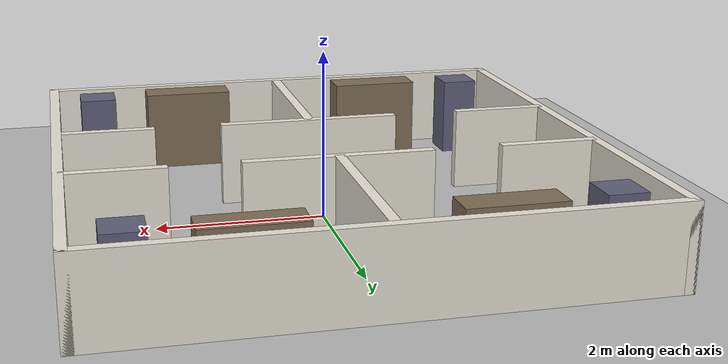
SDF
<?xml version="1.0" ?>
<sdf version="1.8">
  <world name="romi_office_world">
    <gravity>0 0 -9.8</gravity>

    <plugin filename="ignition-gazebo6-physics-system"
            name="ignition::gazebo::systems::Physics"/>
    <plugin filename="ignition-gazebo6-user-commands-system"
            name="ignition::gazebo::systems::UserCommands"/>
    <plugin filename="ignition-gazebo6-scene-broadcaster-system"
            name="ignition::gazebo::systems::SceneBroadcaster"/>
    <plugin filename="ignition-gazebo6-sensors-system"
            name="ignition::gazebo::systems::Sensors">
      <render_engine>ogre2</render_engine>
    </plugin>

    <!-- Neutral indoor ambient (no harsh outdoor sun) -->
    <scene>
      <ambient>0.55 0.55 0.55 1</ambient>
      <background>0.2 0.2 0.2 1</background>
      <shadows>false</shadows>
    </scene>

    <!-- Overhead fill light simulating fluorescent ceiling panels -->
    <light name="ceiling_light_main" type="directional">
      <cast_shadows>false</cast_shadows>
      <pose>0 0 5 0 0 0</pose>
      <diffuse>0.8 0.8 0.8 1</diffuse>
      <specular>0.1 0.1 0.1 1</specular>
      <direction>0 0 -1</direction>
      <attenuation>
        <range>20</range>
        <constant>0.8</constant>
        <linear>0.02</linear>
        <quadratic>0.0</quadratic>
      </attenuation>
    </light>

    <!-- Soft fill from above to avoid harsh shadows -->
    <light name="ceiling_light_fill" type="directional">
      <cast_shadows>false</cast_shadows>
      <pose>0 0 4 0 0 0</pose>
      <diffuse>0.4 0.4 0.4 1</diffuse>
      <specular>0.0 0.0 0.0 1</specular>
      <direction>0.1 0.1 -1</direction>
      <attenuation>
        <range>20</range>
        <constant>0.9</constant>
        <linear>0.01</linear>
        <quadratic>0.0</quadratic>
      </attenuation>
    </light>

    <!-- ───────── FLOOR ───────── -->
    <model name="floor_plane">
      <static>true</static>
      <pose>0 0 0 0 0 0</pose>
      <link name="link">
        <collision name="collision">
          <geometry>
            <plane>
              <normal>0 0 1</normal>
              <size>10 10</size>
            </plane>
          </geometry>
          <surface>
            <friction>
              <ode>
                <mu>1.0</mu>
                <mu2>1.0</mu2>
              </ode>
            </friction>
          </surface>
        </collision>
        <visual name="visual">
          <geometry>
            <plane>
              <normal>0 0 1</normal>
              <size>10 10</size>
            </plane>
          </geometry>
          <material>
            <!-- Light grey tile floor -->
            <ambient>0.72 0.72 0.72 1</ambient>
            <diffuse>0.72 0.72 0.72 1</diffuse>
          </material>
        </visual>
      </link>
    </model>

    <!-- South outer wall — full width to seal corners -->
    <model name="wall_outer_south">
      <static>true</static>
      <pose>0 -3.06 0.5 0 0 0</pose>
      <link name="link">
        <collision name="collision">
          <geometry><box><size>6.24 0.12 1.0</size></box></geometry>
        </collision>
        <visual name="visual">
          <geometry><box><size>6.24 0.12 1.0</size></box></geometry>
          <material>
            <ambient>0.91 0.89 0.84 1</ambient>
            <diffuse>0.91 0.89 0.84 1</diffuse>
          </material>
        </visual>
      </link>
    </model>

    <!-- North outer wall — full width to seal corners -->
    <model name="wall_outer_north">
      <static>true</static>
      <pose>0 3.06 0.5 0 0 0</pose>
      <link name="link">
        <collision name="collision">
          <geometry><box><size>6.24 0.12 1.0</size></box></geometry>
        </collision>
        <visual name="visual">
          <geometry><box><size>6.24 0.12 1.0</size></box></geometry>
          <material>
            <ambient>0.91 0.89 0.84 1</ambient>
            <diffuse>0.91 0.89 0.84 1</diffuse>
          </material>
        </visual>
      </link>
    </model>

    <!-- West outer wall — spans full height incl. corner overlap -->
    <model name="wall_outer_west">
      <static>true</static>
      <pose>-3.06 0 0.5 0 0 0</pose>
      <link name="link">
        <collision name="collision">
          <geometry><box><size>0.12 6.24 1.0</size></box></geometry>
        </collision>
        <visual name="visual">
          <geometry><box><size>0.12 6.24 1.0</size></box></geometry>
          <material>
            <ambient>0.91 0.89 0.84 1</ambient>
            <diffuse>0.91 0.89 0.84 1</diffuse>
          </material>
        </visual>
      </link>
    </model>

    <!-- East outer wall -->
    <model name="wall_outer_east">
      <static>true</static>
      <pose>3.06 0 0.5 0 0 0</pose>
      <link name="link">
        <collision name="collision">
          <geometry><box><size>0.12 6.24 1.0</size></box></geometry>
        </collision>
        <visual name="visual">
          <geometry><box><size>0.12 6.24 1.0</size></box></geometry>
          <material>
            <ambient>0.91 0.89 0.84 1</ambient>
            <diffuse>0.91 0.89 0.84 1</diffuse>
          </material>
        </visual>
      </link>
    </model>

    <!-- West segment: X = −3.06 … −1.90  len = 1.16 m  ctr = −2.48 -->
    <model name="wall_hallway_north_west">
      <static>true</static>
      <pose>-2.48 0.8 0.5 0 0 0</pose>
      <link name="link">
        <collision name="collision">
          <geometry><box><size>1.16 0.12 1.0</size></box></geometry>
        </collision>
        <visual name="visual">
          <geometry><box><size>1.16 0.12 1.0</size></box></geometry>
          <material>
            <ambient>0.91 0.89 0.84 1</ambient>
            <diffuse>0.91 0.89 0.84 1</diffuse>
          </material>
        </visual>
      </link>
    </model>

    <!-- Centre segment: X = −1.10 … +1.10  len = 2.20 m  ctr = 0 -->
    <model name="wall_hallway_north_centre">
      <static>true</static>
      <pose>0 0.8 0.5 0 0 0</pose>
      <link name="link">
        <collision name="collision">
          <geometry><box><size>2.20 0.12 1.0</size></box></geometry>
        </collision>
        <visual name="visual">
          <geometry><box><size>2.20 0.12 1.0</size></box></geometry>
          <material>
            <ambient>0.91 0.89 0.84 1</ambient>
            <diffuse>0.91 0.89 0.84 1</diffuse>
          </material>
        </visual>
      </link>
    </model>

    <!-- East segment: X = +1.90 … +3.06  len = 1.16 m  ctr = +2.48 -->
    <model name="wall_hallway_north_east">
      <static>true</static>
      <pose>2.48 0.8 0.5 0 0 0</pose>
      <link name="link">
        <collision name="collision">
          <geometry><box><size>1.16 0.12 1.0</size></box></geometry>
        </collision>
        <visual name="visual">
          <geometry><box><size>1.16 0.12 1.0</size></box></geometry>
          <material>
            <ambient>0.91 0.89 0.84 1</ambient>
            <diffuse>0.91 0.89 0.84 1</diffuse>
          </material>
        </visual>
      </link>
    </model>

    <model name="wall_hallway_south_west">
      <static>true</static>
      <pose>-2.48 -0.8 0.5 0 0 0</pose>
      <link name="link">
        <collision name="collision">
          <geometry><box><size>1.16 0.12 1.0</size></box></geometry>
        </collision>
        <visual name="visual">
          <geometry><box><size>1.16 0.12 1.0</size></box></geometry>
          <material>
            <ambient>0.91 0.89 0.84 1</ambient>
            <diffuse>0.91 0.89 0.84 1</diffuse>
          </material>
        </visual>
      </link>
    </model>

    <model name="wall_hallway_south_centre">
      <static>true</static>
      <pose>0 -0.8 0.5 0 0 0</pose>
      <link name="link">
        <collision name="collision">
          <geometry><box><size>2.20 0.12 1.0</size></box></geometry>
        </collision>
        <visual name="visual">
          <geometry><box><size>2.20 0.12 1.0</size></box></geometry>
          <material>
            <ambient>0.91 0.89 0.84 1</ambient>
            <diffuse>0.91 0.89 0.84 1</diffuse>
          </material>
        </visual>
      </link>
    </model>

    <model name="wall_hallway_south_east">
      <static>true</static>
      <pose>2.48 -0.8 0.5 0 0 0</pose>
      <link name="link">
        <collision name="collision">
          <geometry><box><size>1.16 0.12 1.0</size></box></geometry>
        </collision>
        <visual name="visual">
          <geometry><box><size>1.16 0.12 1.0</size></box></geometry>
          <material>
            <ambient>0.91 0.89 0.84 1</ambient>
            <diffuse>0.91 0.89 0.84 1</diffuse>
          </material>
        </visual>
      </link>
    </model>

    <model name="wall_divider_north">
      <static>true</static>
      <pose>0 1.9 0.5 0 0 0</pose>
      <link name="link">
        <collision name="collision">
          <geometry><box><size>0.12 2.20 1.0</size></box></geometry>
        </collision>
        <visual name="visual">
          <geometry><box><size>0.12 2.20 1.0</size></box></geometry>
          <material>
            <ambient>0.91 0.89 0.84 1</ambient>
            <diffuse>0.91 0.89 0.84 1</diffuse>
          </material>
        </visual>
      </link>
    </model>

    <model name="wall_divider_south">
      <static>true</static>
      <pose>0 -1.9 0.5 0 0 0</pose>
      <link name="link">
        <collision name="collision">
          <geometry><box><size>0.12 2.20 1.0</size></box></geometry>
        </collision>
        <visual name="visual">
          <geometry><box><size>0.12 2.20 1.0</size></box></geometry>
          <material>
            <ambient>0.91 0.89 0.84 1</ambient>
            <diffuse>0.91 0.89 0.84 1</diffuse>
          </material>
        </visual>
      </link>
    </model>

    <!-- Room A — corner filing cabinet -->
    <model name="furniture_A_cabinet">
      <static>true</static>
      <pose>-2.50 2.55 0.5 0 0 0</pose>
      <link name="link">
        <collision name="collision">
          <geometry><box><size>0.45 0.45 1.0</size></box></geometry>
        </collision>
        <visual name="visual">
          <geometry><box><size>0.45 0.45 1.0</size></box></geometry>
          <material>
            <ambient>0.38 0.38 0.48 1</ambient>
            <diffuse>0.38 0.38 0.48 1</diffuse>
          </material>
        </visual>
      </link>
    </model>

    <!-- Room A — desk along north wall -->
    <model name="furniture_A_desk">
      <static>true</static>
      <pose>-1.30 2.65 0.5 0 0 0</pose>
      <link name="link">
        <collision name="collision">
          <geometry><box><size>1.10 0.40 1.0</size></box></geometry>
        </collision>
        <visual name="visual">
          <geometry><box><size>1.10 0.40 1.0</size></box></geometry>
          <material>
            <ambient>0.50 0.43 0.34 1</ambient>
            <diffuse>0.50 0.43 0.34 1</diffuse>
          </material>
        </visual>
      </link>
    </model>

    <!-- Room B — corner filing cabinet -->
    <model name="furniture_B_cabinet">
      <static>true</static>
      <pose>2.50 2.55 0.5 0 0 0</pose>
      <link name="link">
        <collision name="collision">
          <geometry><box><size>0.45 0.45 1.0</size></box></geometry>
        </collision>
        <visual name="visual">
          <geometry><box><size>0.45 0.45 1.0</size></box></geometry>
          <material>
            <ambient>0.38 0.38 0.48 1</ambient>
            <diffuse>0.38 0.38 0.48 1</diffuse>
          </material>
        </visual>
      </link>
    </model>

    <!-- Room B — desk along north wall -->
    <model name="furniture_B_desk">
      <static>true</static>
      <pose>1.30 2.65 0.5 0 0 0</pose>
      <link name="link">
        <collision name="collision">
          <geometry><box><size>1.10 0.40 1.0</size></box></geometry>
        </collision>
        <visual name="visual">
          <geometry><box><size>1.10 0.40 1.0</size></box></geometry>
          <material>
            <ambient>0.50 0.43 0.34 1</ambient>
            <diffuse>0.50 0.43 0.34 1</diffuse>
          </material>
        </visual>
      </link>
    </model>

    <!-- Room C — corner filing cabinet -->
    <model name="furniture_C_cabinet">
      <static>true</static>
      <pose>-2.50 -2.55 0.5 0 0 0</pose>
      <link name="link">
        <collision name="collision">
          <geometry><box><size>0.45 0.45 1.0</size></box></geometry>
        </collision>
        <visual name="visual">
          <geometry><box><size>0.45 0.45 1.0</size></box></geometry>
          <material>
            <ambient>0.38 0.38 0.48 1</ambient>
            <diffuse>0.38 0.38 0.48 1</diffuse>
          </material>
        </visual>
      </link>
    </model>

    <!-- Room C — desk along south wall -->
    <model name="furniture_C_desk">
      <static>true</static>
      <pose>-1.30 -2.65 0.5 0 0 0</pose>
      <link name="link">
        <collision name="collision">
          <geometry><box><size>1.10 0.40 1.0</size></box></geometry>
        </collision>
        <visual name="visual">
          <geometry><box><size>1.10 0.40 1.0</size></box></geometry>
          <material>
            <ambient>0.50 0.43 0.34 1</ambient>
            <diffuse>0.50 0.43 0.34 1</diffuse>
          </material>
        </visual>
      </link>
    </model>

    <!-- Room D — corner filing cabinet -->
    <model name="furniture_D_cabinet">
      <static>true</static>
      <pose>2.50 -2.55 0.5 0 0 0</pose>
      <link name="link">
        <collision name="collision">
          <geometry><box><size>0.45 0.45 1.0</size></box></geometry>
        </collision>
        <visual name="visual">
          <geometry><box><size>0.45 0.45 1.0</size></box></geometry>
          <material>
            <ambient>0.38 0.38 0.48 1</ambient>
            <diffuse>0.38 0.38 0.48 1</diffuse>
          </material>
        </visual>
      </link>
    </model>

    <!-- Room D — desk along south wall -->
    <model name="furniture_D_desk">
      <static>true</static>
      <pose>1.30 -2.65 0.5 0 0 0</pose>
      <link name="link">
        <collision name="collision">
          <geometry><box><size>1.10 0.40 1.0</size></box></geometry>
        </collision>
        <visual name="visual">
          <geometry><box><size>1.10 0.40 1.0</size></box></geometry>
          <material>
            <ambient>0.50 0.43 0.34 1</ambient>
            <diffuse>0.50 0.43 0.34 1</diffuse>
          </material>
        </visual>
      </link>
    </model>

  </world>
</sdf>
